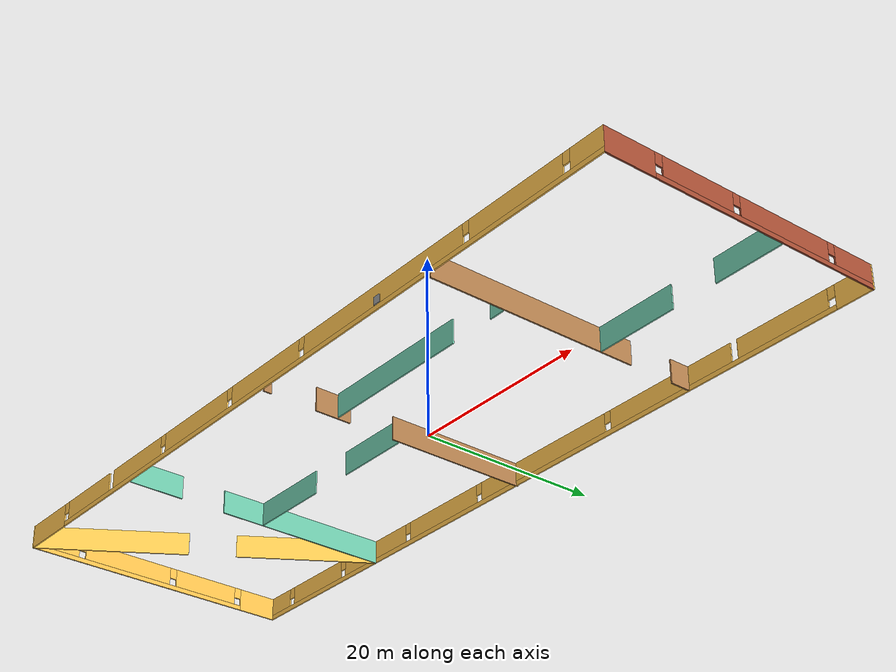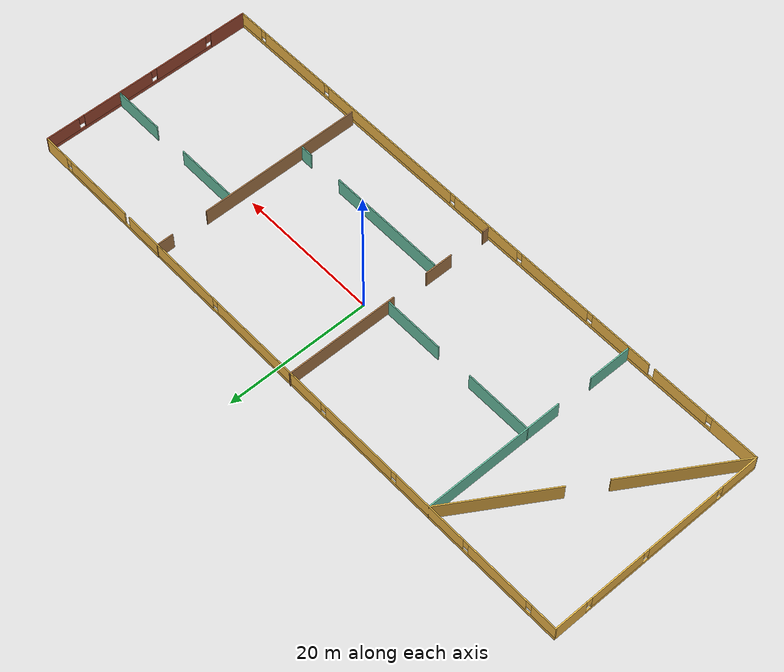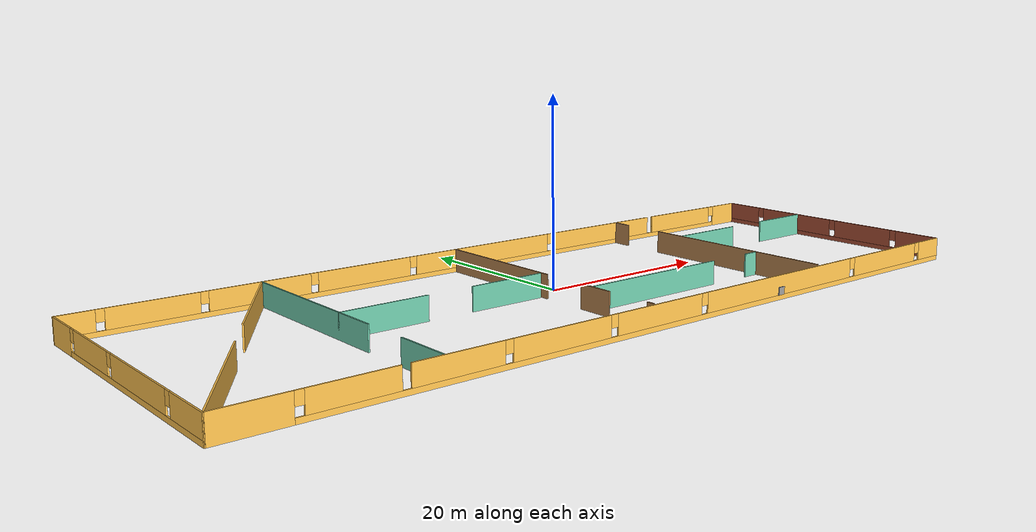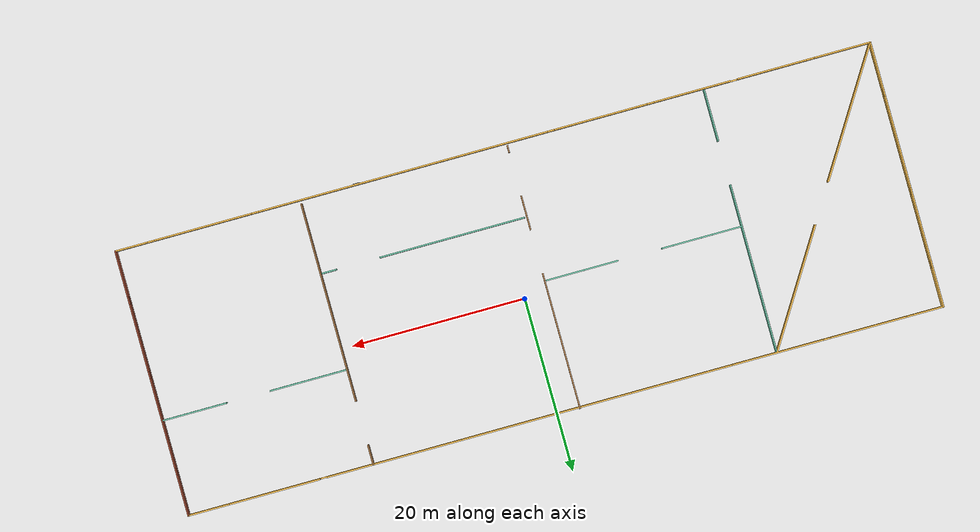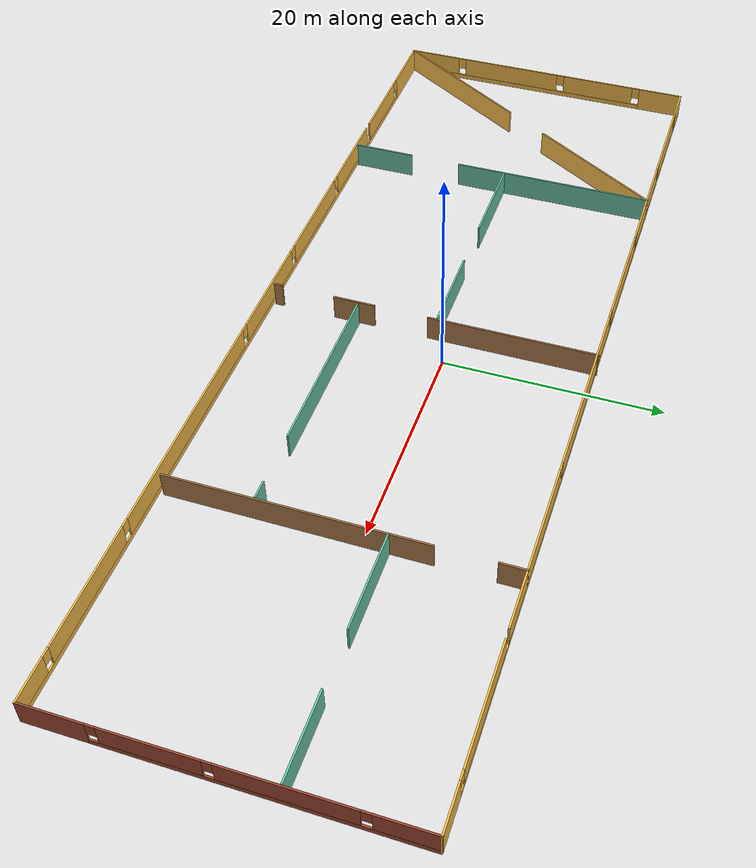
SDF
<?xml version='1.0'?>
<sdf version='1.6'>
  <model name='Building'>
    <pose frame=''>-1.07617 -1.9803 0 0 -0 0</pose>
    <link name='Wall_0'>
      <pose frame=''>-43.6608 -0.039593 0 0 -0 -1.5708</pose>
      <visual name='Wall_0_Visual_0'>
        <pose frame=''>-13.0828 0 1.25 0 -0 0</pose>
        <geometry>
          <box>
            <size>4.5844 0.15 2.5</size>
          </box>
        </geometry>
        <material>
          <script>
            <uri>file://media/materials/scripts/gazebo.material</uri>
            <name>Gazebo/Grey</name>
          </script>
          <ambient>1 0.764706 0.305882 1</ambient>
        </material>
        <meta>
          <layer>0</layer>
        </meta>
      </visual>
      <collision name='Wall_0_Collision_0'>
        <geometry>
          <box>
            <size>4.5844 0.15 2.5</size>
          </box>
        </geometry>
        <pose frame=''>-13.0828 0 1.25 0 -0 0</pose>
      </collision>
      <visual name='Wall_0_Visual_1'>
        <pose frame=''>2.2922 0 0.25 0 -0 0</pose>
        <geometry>
          <box>
            <size>26.1656 0.15 0.5</size>
          </box>
        </geometry>
        <material>
          <script>
            <uri>file://media/materials/scripts/gazebo.material</uri>
            <name>Gazebo/Grey</name>
          </script>
          <ambient>1 0.764706 0.305882 1</ambient>
        </material>
        <meta>
          <layer>0</layer>
        </meta>
      </visual>
      <collision name='Wall_0_Collision_1'>
        <geometry>
          <box>
            <size>26.1656 0.15 0.5</size>
          </box>
        </geometry>
        <pose frame=''>2.2922 0 0.25 0 -0 0</pose>
      </collision>
      <visual name='Wall_0_Visual_2'>
        <pose frame=''>-6.1399 0 1.5 0 -0 0</pose>
        <geometry>
          <box>
            <size>7.7014 0.15 2</size>
          </box>
        </geometry>
        <material>
          <script>
            <uri>file://media/materials/scripts/gazebo.material</uri>
            <name>Gazebo/Grey</name>
          </script>
          <ambient>1 0.764706 0.305882 1</ambient>
        </material>
        <meta>
          <layer>0</layer>
        </meta>
      </visual>
      <collision name='Wall_0_Collision_2'>
        <geometry>
          <box>
            <size>7.7014 0.15 2</size>
          </box>
        </geometry>
        <pose frame=''>-6.1399 0 1.5 0 -0 0</pose>
      </collision>
      <visual name='Wall_0_Visual_3'>
        <pose frame=''>3.79701 0 1.5 0 -0 0</pose>
        <geometry>
          <box>
            <size>10.5724 0.15 2</size>
          </box>
        </geometry>
        <material>
          <script>
            <uri>file://media/materials/scripts/gazebo.material</uri>
            <name>Gazebo/Grey</name>
          </script>
          <ambient>1 0.764706 0.305882 1</ambient>
        </material>
        <meta>
          <layer>0</layer>
        </meta>
      </visual>
      <collision name='Wall_0_Collision_3'>
        <geometry>
          <box>
            <size>10.5724 0.15 2</size>
          </box>
        </geometry>
        <pose frame=''>3.79701 0 1.5 0 -0 0</pose>
      </collision>
      <visual name='Wall_0_Visual_4'>
        <pose frame=''>12.6291 0 1.5 0 -0 0</pose>
        <geometry>
          <box>
            <size>5.49178 0.15 2</size>
          </box>
        </geometry>
        <material>
          <script>
            <uri>file://media/materials/scripts/gazebo.material</uri>
            <name>Gazebo/Grey</name>
          </script>
          <ambient>1 0.764706 0.305882 1</ambient>
        </material>
        <meta>
          <layer>0</layer>
        </meta>
      </visual>
      <collision name='Wall_0_Collision_4'>
        <geometry>
          <box>
            <size>5.49178 0.15 2</size>
          </box>
        </geometry>
        <pose frame=''>12.6291 0 1.5 0 -0 0</pose>
      </collision>
      <visual name='Wall_0_Visual_5'>
        <pose frame=''>-10.3906 0 1.9 0 -0 0</pose>
        <geometry>
          <box>
            <size>0.8 0.15 1.2</size>
          </box>
        </geometry>
        <material>
          <script>
            <uri>file://media/materials/scripts/gazebo.material</uri>
            <name>Gazebo/Grey</name>
          </script>
          <ambient>1 0.764706 0.305882 1</ambient>
        </material>
        <meta>
          <layer>0</layer>
        </meta>
      </visual>
      <collision name='Wall_0_Collision_5'>
        <geometry>
          <box>
            <size>0.8 0.15 1.2</size>
          </box>
        </geometry>
        <pose frame=''>-10.3906 0 1.9 0 -0 0</pose>
      </collision>
      <visual name='Wall_0_Visual_6'>
        <pose frame=''>-1.8892 0 1.9 0 -0 0</pose>
        <geometry>
          <box>
            <size>0.8 0.15 1.2</size>
          </box>
        </geometry>
        <material>
          <script>
            <uri>file://media/materials/scripts/gazebo.material</uri>
            <name>Gazebo/Grey</name>
          </script>
          <ambient>1 0.764706 0.305882 1</ambient>
        </material>
        <meta>
          <layer>0</layer>
        </meta>
      </visual>
      <collision name='Wall_0_Collision_6'>
        <geometry>
          <box>
            <size>0.8 0.15 1.2</size>
          </box>
        </geometry>
        <pose frame=''>-1.8892 0 1.9 0 -0 0</pose>
      </collision>
      <visual name='Wall_0_Visual_7'>
        <pose frame=''>9.48322 0 1.9 0 -0 0</pose>
        <geometry>
          <box>
            <size>0.8 0.15 1.2</size>
          </box>
        </geometry>
        <material>
          <script>
            <uri>file://media/materials/scripts/gazebo.material</uri>
            <name>Gazebo/Grey</name>
          </script>
          <ambient>1 0.764706 0.305882 1</ambient>
        </material>
        <meta>
          <layer>0</layer>
        </meta>
      </visual>
      <collision name='Wall_0_Collision_7'>
        <geometry>
          <box>
            <size>0.8 0.15 1.2</size>
          </box>
        </geometry>
        <pose frame=''>9.48322 0 1.9 0 -0 0</pose>
      </collision>
    </link>
    <link name='Wall_1'>
      <pose frame=''>0.014212 -15.3396 0 0 -0 0</pose>
      <visual name='Wall_1_Visual_0'>
        <pose frame=''>-40.4458 0 1.25 0 -0 0</pose>
        <geometry>
          <box>
            <size>6.6085 0.15 2.5</size>
          </box>
        </geometry>
        <material>
          <script>
            <uri>file://media/materials/scripts/gazebo.material</uri>
            <name>Gazebo/Grey</name>
          </script>
          <ambient>1 0.764706 0.305882 1</ambient>
        </material>
        <meta>
          <layer>0</layer>
        </meta>
      </visual>
      <collision name='Wall_1_Collision_0'>
        <geometry>
          <box>
            <size>6.6085 0.15 2.5</size>
          </box>
        </geometry>
        <pose frame=''>-40.4458 0 1.25 0 -0 0</pose>
      </collision>
      <visual name='Wall_1_Visual_1'>
        <pose frame=''>3.30425 0 0.25 0 -0 0</pose>
        <geometry>
          <box>
            <size>80.8915 0.15 0.5</size>
          </box>
        </geometry>
        <material>
          <script>
            <uri>file://media/materials/scripts/gazebo.material</uri>
            <name>Gazebo/Grey</name>
          </script>
          <ambient>1 0.764706 0.305882 1</ambient>
        </material>
        <meta>
          <layer>0</layer>
        </meta>
      </visual>
      <collision name='Wall_1_Collision_1'>
        <geometry>
          <box>
            <size>80.8915 0.15 0.5</size>
          </box>
        </geometry>
        <pose frame=''>3.30425 0 0.25 0 -0 0</pose>
      </collision>
      <visual name='Wall_1_Visual_2'>
        <pose frame=''>-32.3294 0 1.5 0 -0 0</pose>
        <geometry>
          <box>
            <size>8.02424 0.15 2</size>
          </box>
        </geometry>
        <material>
          <script>
            <uri>file://media/materials/scripts/gazebo.material</uri>
            <name>Gazebo/Grey</name>
          </script>
          <ambient>1 0.764706 0.305882 1</ambient>
        </material>
        <meta>
          <layer>0</layer>
        </meta>
      </visual>
      <collision name='Wall_1_Collision_2'>
        <geometry>
          <box>
            <size>8.02424 0.15 2</size>
          </box>
        </geometry>
        <pose frame=''>-32.3294 0 1.5 0 -0 0</pose>
      </collision>
      <visual name='Wall_1_Visual_3'>
        <pose frame=''>-23.0747 0 1.5 0 -0 0</pose>
        <geometry>
          <box>
            <size>8.88514 0.15 2</size>
          </box>
        </geometry>
        <material>
          <script>
            <uri>file://media/materials/scripts/gazebo.material</uri>
            <name>Gazebo/Grey</name>
          </script>
          <ambient>1 0.764706 0.305882 1</ambient>
        </material>
        <meta>
          <layer>0</layer>
        </meta>
      </visual>
      <collision name='Wall_1_Collision_3'>
        <geometry>
          <box>
            <size>8.88514 0.15 2</size>
          </box>
        </geometry>
        <pose frame=''>-23.0747 0 1.5 0 -0 0</pose>
      </collision>
      <visual name='Wall_1_Visual_4'>
        <pose frame=''>-12.4749 0 1.5 0 -0 0</pose>
        <geometry>
          <box>
            <size>10.7146 0.15 2</size>
          </box>
        </geometry>
        <material>
          <script>
            <uri>file://media/materials/scripts/gazebo.material</uri>
            <name>Gazebo/Grey</name>
          </script>
          <ambient>1 0.764706 0.305882 1</ambient>
        </material>
        <meta>
          <layer>0</layer>
        </meta>
      </visual>
      <collision name='Wall_1_Collision_4'>
        <geometry>
          <box>
            <size>10.7146 0.15 2</size>
          </box>
        </geometry>
        <pose frame=''>-12.4749 0 1.5 0 -0 0</pose>
      </collision>
      <visual name='Wall_1_Visual_5'>
        <pose frame=''>-1.01411 0 1.5 0 -0 0</pose>
        <geometry>
          <box>
            <size>10.6069 0.15 2</size>
          </box>
        </geometry>
        <material>
          <script>
            <uri>file://media/materials/scripts/gazebo.material</uri>
            <name>Gazebo/Grey</name>
          </script>
          <ambient>1 0.764706 0.305882 1</ambient>
        </material>
        <meta>
          <layer>0</layer>
        </meta>
      </visual>
      <collision name='Wall_1_Collision_5'>
        <geometry>
          <box>
            <size>10.6069 0.15 2</size>
          </box>
        </geometry>
        <pose frame=''>-1.01411 0 1.5 0 -0 0</pose>
      </collision>
      <visual name='Wall_1_Visual_6'>
        <pose frame=''>16.0963 0 1.5 0 -0 0</pose>
        <geometry>
          <box>
            <size>22.0139 0.15 2</size>
          </box>
        </geometry>
        <material>
          <script>
            <uri>file://media/materials/scripts/gazebo.material</uri>
            <name>Gazebo/Grey</name>
          </script>
          <ambient>1 0.764706 0.305882 1</ambient>
        </material>
        <meta>
          <layer>0</layer>
        </meta>
      </visual>
      <collision name='Wall_1_Collision_6'>
        <geometry>
          <box>
            <size>22.0139 0.15 2</size>
          </box>
        </geometry>
        <pose frame=''>16.0963 0 1.5 0 -0 0</pose>
      </collision>
      <visual name='Wall_1_Visual_7'>
        <pose frame=''>33.5296 0 1.5 0 -0 0</pose>
        <geometry>
          <box>
            <size>11.2526 0.15 2</size>
          </box>
        </geometry>
        <material>
          <script>
            <uri>file://media/materials/scripts/gazebo.material</uri>
            <name>Gazebo/Grey</name>
          </script>
          <ambient>1 0.764706 0.305882 1</ambient>
        </material>
        <meta>
          <layer>0</layer>
        </meta>
      </visual>
      <collision name='Wall_1_Collision_7'>
        <geometry>
          <box>
            <size>11.2526 0.15 2</size>
          </box>
        </geometry>
        <pose frame=''>33.5296 0 1.5 0 -0 0</pose>
      </collision>
      <visual name='Wall_1_Visual_8'>
        <pose frame=''>41.8529 0 1.5 0 -0 0</pose>
        <geometry>
          <box>
            <size>3.79414 0.15 2</size>
          </box>
        </geometry>
        <material>
          <script>
            <uri>file://media/materials/scripts/gazebo.material</uri>
            <name>Gazebo/Grey</name>
          </script>
          <ambient>1 0.764706 0.305882 1</ambient>
        </material>
        <meta>
          <layer>0</layer>
        </meta>
      </visual>
      <collision name='Wall_1_Collision_8'>
        <geometry>
          <box>
            <size>3.79414 0.15 2</size>
          </box>
        </geometry>
        <pose frame=''>41.8529 0 1.5 0 -0 0</pose>
      </collision>
      <visual name='Wall_1_Visual_9'>
        <pose frame=''>-36.7415 0 1.9 0 -0 0</pose>
        <geometry>
          <box>
            <size>0.8 0.15 1.2</size>
          </box>
        </geometry>
        <material>
          <script>
            <uri>file://media/materials/scripts/gazebo.material</uri>
            <name>Gazebo/Grey</name>
          </script>
          <ambient>1 0.764706 0.305882 1</ambient>
        </material>
        <meta>
          <layer>0</layer>
        </meta>
      </visual>
      <collision name='Wall_1_Collision_9'>
        <geometry>
          <box>
            <size>0.8 0.15 1.2</size>
          </box>
        </geometry>
        <pose frame=''>-36.7415 0 1.9 0 -0 0</pose>
      </collision>
      <visual name='Wall_1_Visual_10'>
        <pose frame=''>-28.3173 0 1.9 0 -0 0</pose>
        <geometry>
          <box>
            <size>0.01 0.15 1.2</size>
          </box>
        </geometry>
        <material>
          <script>
            <uri>file://media/materials/scripts/gazebo.material</uri>
            <name>Gazebo/Grey</name>
          </script>
          <ambient>1 0.764706 0.305882 1</ambient>
        </material>
        <meta>
          <layer>0</layer>
        </meta>
      </visual>
      <collision name='Wall_1_Collision_10'>
        <geometry>
          <box>
            <size>0.01 0.15 1.2</size>
          </box>
        </geometry>
        <pose frame=''>-28.3173 0 1.9 0 -0 0</pose>
      </collision>
      <visual name='Wall_1_Visual_11'>
        <pose frame=''>-18.2321 0 1.9 0 -0 0</pose>
        <geometry>
          <box>
            <size>0.8 0.15 1.2</size>
          </box>
        </geometry>
        <material>
          <script>
            <uri>file://media/materials/scripts/gazebo.material</uri>
            <name>Gazebo/Grey</name>
          </script>
          <ambient>1 0.764706 0.305882 1</ambient>
        </material>
        <meta>
          <layer>0</layer>
        </meta>
      </visual>
      <collision name='Wall_1_Collision_11'>
        <geometry>
          <box>
            <size>0.8 0.15 1.2</size>
          </box>
        </geometry>
        <pose frame=''>-18.2321 0 1.9 0 -0 0</pose>
      </collision>
      <visual name='Wall_1_Visual_12'>
        <pose frame=''>-6.71758 0 1.9 0 -0 0</pose>
        <geometry>
          <box>
            <size>0.8 0.15 1.2</size>
          </box>
        </geometry>
        <material>
          <script>
            <uri>file://media/materials/scripts/gazebo.material</uri>
            <name>Gazebo/Grey</name>
          </script>
          <ambient>1 0.764706 0.305882 1</ambient>
        </material>
        <meta>
          <layer>0</layer>
        </meta>
      </visual>
      <collision name='Wall_1_Collision_12'>
        <geometry>
          <box>
            <size>0.8 0.15 1.2</size>
          </box>
        </geometry>
        <pose frame=''>-6.71758 0 1.9 0 -0 0</pose>
      </collision>
      <visual name='Wall_1_Visual_13'>
        <pose frame=''>4.68936 0 1.9 0 -0 0</pose>
        <geometry>
          <box>
            <size>0.8 0.15 1.2</size>
          </box>
        </geometry>
        <material>
          <script>
            <uri>file://media/materials/scripts/gazebo.material</uri>
            <name>Gazebo/Grey</name>
          </script>
          <ambient>1 0.764706 0.305882 1</ambient>
        </material>
        <meta>
          <layer>0</layer>
        </meta>
      </visual>
      <collision name='Wall_1_Collision_13'>
        <geometry>
          <box>
            <size>0.8 0.15 1.2</size>
          </box>
        </geometry>
        <pose frame=''>4.68936 0 1.9 0 -0 0</pose>
      </collision>
      <visual name='Wall_1_Visual_14'>
        <pose frame=''>27.5032 0 1.9 0 -0 0</pose>
        <geometry>
          <box>
            <size>0.8 0.15 1.2</size>
          </box>
        </geometry>
        <material>
          <script>
            <uri>file://media/materials/scripts/gazebo.material</uri>
            <name>Gazebo/Grey</name>
          </script>
          <ambient>1 0.764706 0.305882 1</ambient>
        </material>
        <meta>
          <layer>0</layer>
        </meta>
      </visual>
      <collision name='Wall_1_Collision_14'>
        <geometry>
          <box>
            <size>0.8 0.15 1.2</size>
          </box>
        </geometry>
        <pose frame=''>27.5032 0 1.9 0 -0 0</pose>
      </collision>
      <visual name='Wall_1_Visual_15'>
        <pose frame=''>39.5559 0 1.9 0 -0 0</pose>
        <geometry>
          <box>
            <size>0.8 0.15 1.2</size>
          </box>
        </geometry>
        <material>
          <script>
            <uri>file://media/materials/scripts/gazebo.material</uri>
            <name>Gazebo/Grey</name>
          </script>
          <ambient>1 0.764706 0.305882 1</ambient>
        </material>
        <meta>
          <layer>0</layer>
        </meta>
      </visual>
      <collision name='Wall_1_Collision_15'>
        <geometry>
          <box>
            <size>0.8 0.15 1.2</size>
          </box>
        </geometry>
        <pose frame=''>39.5559 0 1.9 0 -0 0</pose>
      </collision>
    </link>
    <link name='Wall_11'>
      <pose frame=''>32.9634 4.28392 0 0 -0 0</pose>
      <visual name='Wall_11_Visual_0'>
        <pose frame=''>-6.17941 0 1.25 0 -0 0</pose>
        <geometry>
          <box>
            <size>8.89118 0.15 2.5</size>
          </box>
        </geometry>
        <material>
          <script>
            <uri>file://media/materials/scripts/gazebo.material</uri>
            <name>Gazebo/Grey</name>
          </script>
          <ambient>0.435294 0.796078 0.67451 1</ambient>
        </material>
        <meta>
          <layer>0</layer>
        </meta>
      </visual>
      <collision name='Wall_11_Collision_0'>
        <geometry>
          <box>
            <size>8.89118 0.15 2.5</size>
          </box>
        </geometry>
        <pose frame=''>-6.17941 0 1.25 0 -0 0</pose>
      </collision>
      <visual name='Wall_11_Visual_1'>
        <pose frame=''>6.94559 0 1.25 0 -0 0</pose>
        <geometry>
          <box>
            <size>7.35882 0.15 2.5</size>
          </box>
        </geometry>
        <material>
          <script>
            <uri>file://media/materials/scripts/gazebo.material</uri>
            <name>Gazebo/Grey</name>
          </script>
          <ambient>0.435294 0.796078 0.67451 1</ambient>
        </material>
        <meta>
          <layer>0</layer>
        </meta>
      </visual>
      <collision name='Wall_11_Collision_1'>
        <geometry>
          <box>
            <size>7.35882 0.15 2.5</size>
          </box>
        </geometry>
        <pose frame=''>6.94559 0 1.25 0 -0 0</pose>
      </collision>
    </link>
    <link name='Wall_13'>
      <pose frame=''>10.4155 -6.80018 0 0 -0 3.14159</pose>
      <visual name='Wall_13_Visual_0'>
        <pose frame=''>-10.8926 0 1.25 0 -0 0</pose>
        <geometry>
          <box>
            <size>1.71481 0.15 2.5</size>
          </box>
        </geometry>
        <material>
          <script>
            <uri>file://media/materials/scripts/gazebo.material</uri>
            <name>Gazebo/Grey</name>
          </script>
          <ambient>0.435294 0.796078 0.67451 1</ambient>
        </material>
        <meta>
          <layer>0</layer>
        </meta>
      </visual>
      <collision name='Wall_13_Collision_0'>
        <geometry>
          <box>
            <size>1.71481 0.15 2.5</size>
          </box>
        </geometry>
        <pose frame=''>-10.8926 0 1.25 0 -0 0</pose>
      </collision>
      <visual name='Wall_13_Visual_1'>
        <pose frame=''>3.3574 0 1.25 0 -0 0</pose>
        <geometry>
          <box>
            <size>16.7852 0.15 2.5</size>
          </box>
        </geometry>
        <material>
          <script>
            <uri>file://media/materials/scripts/gazebo.material</uri>
            <name>Gazebo/Grey</name>
          </script>
          <ambient>0.435294 0.796078 0.67451 1</ambient>
        </material>
        <meta>
          <layer>0</layer>
        </meta>
      </visual>
      <collision name='Wall_13_Collision_1'>
        <geometry>
          <box>
            <size>16.7852 0.15 2.5</size>
          </box>
        </geometry>
        <pose frame=''>3.3574 0 1.25 0 -0 0</pose>
      </collision>
    </link>
    <link name='Wall_15'>
      <pose frame=''>-13.0981 0.625087 0 0 -0 0</pose>
      <visual name='Wall_15_Visual_0'>
        <pose frame=''>-6.69571 0 1.25 0 -0 0</pose>
        <geometry>
          <box>
            <size>9.35858 0.15 2.5</size>
          </box>
        </geometry>
        <material>
          <script>
            <uri>file://media/materials/scripts/gazebo.material</uri>
            <name>Gazebo/Grey</name>
          </script>
          <ambient>0.435294 0.796078 0.67451 1</ambient>
        </material>
        <meta>
          <layer>0</layer>
        </meta>
      </visual>
      <collision name='Wall_15_Collision_0'>
        <geometry>
          <box>
            <size>9.35858 0.15 2.5</size>
          </box>
        </geometry>
        <pose frame=''>-6.69571 0 1.25 0 -0 0</pose>
      </collision>
      <visual name='Wall_15_Visual_1'>
        <pose frame=''>7.17929 0 1.25 0 -0 0</pose>
        <geometry>
          <box>
            <size>8.39142 0.15 2.5</size>
          </box>
        </geometry>
        <material>
          <script>
            <uri>file://media/materials/scripts/gazebo.material</uri>
            <name>Gazebo/Grey</name>
          </script>
          <ambient>0.435294 0.796078 0.67451 1</ambient>
        </material>
        <meta>
          <layer>0</layer>
        </meta>
      </visual>
      <collision name='Wall_15_Collision_1'>
        <geometry>
          <box>
            <size>8.39142 0.15 2.5</size>
          </box>
        </geometry>
        <pose frame=''>7.17929 0 1.25 0 -0 0</pose>
      </collision>
    </link>
    <link name='Wall_17'>
      <pose frame=''>-34.0295 -0.039593 0 0 -0 1.00897</pose>
      <visual name='Wall_17_Visual_0'>
        <pose frame=''>-9.99099 0 1.25 0 -0 0</pose>
        <geometry>
          <box>
            <size>16.3262 0.15 2.5</size>
          </box>
        </geometry>
        <material>
          <script>
            <uri>file://media/materials/scripts/gazebo.material</uri>
            <name>Gazebo/Grey</name>
          </script>
          <ambient>1 0.764706 0.305882 1</ambient>
        </material>
        <meta>
          <layer>0</layer>
        </meta>
      </visual>
      <collision name='Wall_17_Collision_0'>
        <geometry>
          <box>
            <size>16.3262 0.15 2.5</size>
          </box>
        </geometry>
        <pose frame=''>-9.99099 0 1.25 0 -0 0</pose>
      </collision>
      <visual name='Wall_17_Visual_1'>
        <pose frame=''>10.6631 0 1.25 0 -0 0</pose>
        <geometry>
          <box>
            <size>14.982 0.15 2.5</size>
          </box>
        </geometry>
        <material>
          <script>
            <uri>file://media/materials/scripts/gazebo.material</uri>
            <name>Gazebo/Grey</name>
          </script>
          <ambient>1 0.764706 0.305882 1</ambient>
        </material>
        <meta>
          <layer>0</layer>
        </meta>
      </visual>
      <collision name='Wall_17_Collision_1'>
        <geometry>
          <box>
            <size>14.982 0.15 2.5</size>
          </box>
        </geometry>
        <pose frame=''>10.6631 0 1.25 0 -0 0</pose>
      </collision>
    </link>
    <link name='Wall_2'>
      <pose frame=''>43.6892 -0.039593 0 0 -0 1.5708</pose>
      <visual name='Wall_2_Visual_0'>
        <pose frame=''>-12.6829 0 1.25 0 -0 0</pose>
        <geometry>
          <box>
            <size>5.38417 0.15 2.5</size>
          </box>
        </geometry>
        <material>
          <script>
            <uri>file://media/materials/scripts/gazebo.material</uri>
            <name>Gazebo/Bricks</name>
          </script>
          <ambient>1 1 1 1</ambient>
        </material>
        <meta>
          <layer>0</layer>
        </meta>
      </visual>
      <collision name='Wall_2_Collision_0'>
        <geometry>
          <box>
            <size>5.38417 0.15 2.5</size>
          </box>
        </geometry>
        <pose frame=''>-12.6829 0 1.25 0 -0 0</pose>
      </collision>
      <visual name='Wall_2_Visual_1'>
        <pose frame=''>2.69209 0 0.25 0 -0 0</pose>
        <geometry>
          <box>
            <size>25.3658 0.15 0.5</size>
          </box>
        </geometry>
        <material>
          <script>
            <uri>file://media/materials/scripts/gazebo.material</uri>
            <name>Gazebo/Bricks</name>
          </script>
          <ambient>1 1 1 1</ambient>
        </material>
        <meta>
          <layer>0</layer>
        </meta>
      </visual>
      <collision name='Wall_2_Collision_1'>
        <geometry>
          <box>
            <size>25.3658 0.15 0.5</size>
          </box>
        </geometry>
        <pose frame=''>2.69209 0 0.25 0 -0 0</pose>
      </collision>
      <visual name='Wall_2_Visual_2'>
        <pose frame=''>-5.28632 0 1.5 0 -0 0</pose>
        <geometry>
          <box>
            <size>7.80901 0.15 2</size>
          </box>
        </geometry>
        <material>
          <script>
            <uri>file://media/materials/scripts/gazebo.material</uri>
            <name>Gazebo/Bricks</name>
          </script>
          <ambient>1 1 1 1</ambient>
        </material>
        <meta>
          <layer>0</layer>
        </meta>
      </visual>
      <collision name='Wall_2_Collision_2'>
        <geometry>
          <box>
            <size>7.80901 0.15 2</size>
          </box>
        </geometry>
        <pose frame=''>-5.28632 0 1.5 0 -0 0</pose>
      </collision>
      <visual name='Wall_2_Visual_3'>
        <pose frame=''>4.61404 0 1.5 0 -0 0</pose>
        <geometry>
          <box>
            <size>10.3917 0.15 2</size>
          </box>
        </geometry>
        <material>
          <script>
            <uri>file://media/materials/scripts/gazebo.material</uri>
            <name>Gazebo/Bricks</name>
          </script>
          <ambient>1 1 1 1</ambient>
        </material>
        <meta>
          <layer>0</layer>
        </meta>
      </visual>
      <collision name='Wall_2_Collision_3'>
        <geometry>
          <box>
            <size>10.3917 0.15 2</size>
          </box>
        </geometry>
        <pose frame=''>4.61404 0 1.5 0 -0 0</pose>
      </collision>
      <visual name='Wall_2_Visual_4'>
        <pose frame=''>12.9924 0 1.5 0 -0 0</pose>
        <geometry>
          <box>
            <size>4.7651 0.15 2</size>
          </box>
        </geometry>
        <material>
          <script>
            <uri>file://media/materials/scripts/gazebo.material</uri>
            <name>Gazebo/Bricks</name>
          </script>
          <ambient>1 1 1 1</ambient>
        </material>
        <meta>
          <layer>0</layer>
        </meta>
      </visual>
      <collision name='Wall_2_Collision_4'>
        <geometry>
          <box>
            <size>4.7651 0.15 2</size>
          </box>
        </geometry>
        <pose frame=''>12.9924 0 1.5 0 -0 0</pose>
      </collision>
      <visual name='Wall_2_Visual_5'>
        <pose frame=''>-9.59083 0 1.9 0 -0 0</pose>
        <geometry>
          <box>
            <size>0.8 0.15 1.2</size>
          </box>
        </geometry>
        <material>
          <script>
            <uri>file://media/materials/scripts/gazebo.material</uri>
            <name>Gazebo/Bricks</name>
          </script>
          <ambient>1 1 1 1</ambient>
        </material>
        <meta>
          <layer>0</layer>
        </meta>
      </visual>
      <collision name='Wall_2_Collision_5'>
        <geometry>
          <box>
            <size>0.8 0.15 1.2</size>
          </box>
        </geometry>
        <pose frame=''>-9.59083 0 1.9 0 -0 0</pose>
      </collision>
      <visual name='Wall_2_Visual_6'>
        <pose frame=''>-0.981818 0 1.9 0 -0 0</pose>
        <geometry>
          <box>
            <size>0.8 0.15 1.2</size>
          </box>
        </geometry>
        <material>
          <script>
            <uri>file://media/materials/scripts/gazebo.material</uri>
            <name>Gazebo/Bricks</name>
          </script>
          <ambient>1 1 1 1</ambient>
        </material>
        <meta>
          <layer>0</layer>
        </meta>
      </visual>
      <collision name='Wall_2_Collision_6'>
        <geometry>
          <box>
            <size>0.8 0.15 1.2</size>
          </box>
        </geometry>
        <pose frame=''>-0.981818 0 1.9 0 -0 0</pose>
      </collision>
      <visual name='Wall_2_Visual_7'>
        <pose frame=''>10.2099 0 1.9 0 -0 0</pose>
        <geometry>
          <box>
            <size>0.8 0.15 1.2</size>
          </box>
        </geometry>
        <material>
          <script>
            <uri>file://media/materials/scripts/gazebo.material</uri>
            <name>Gazebo/Bricks</name>
          </script>
          <ambient>1 1 1 1</ambient>
        </material>
        <meta>
          <layer>0</layer>
        </meta>
      </visual>
      <collision name='Wall_2_Collision_7'>
        <geometry>
          <box>
            <size>0.8 0.15 1.2</size>
          </box>
        </geometry>
        <pose frame=''>10.2099 0 1.9 0 -0 0</pose>
      </collision>
    </link>
    <link name='Wall_3'>
      <pose frame=''>0.014212 15.2604 0 0 -0 3.14159</pose>
      <visual name='Wall_3_Visual_0'>
        <pose frame=''>-41.7453 0 1.25 0 -0 0</pose>
        <geometry>
          <box>
            <size>4.00936 0.15 2.5</size>
          </box>
        </geometry>
        <material>
          <script>
            <uri>file://media/materials/scripts/gazebo.material</uri>
            <name>Gazebo/Grey</name>
          </script>
          <ambient>1 0.764706 0.305882 1</ambient>
        </material>
        <meta>
          <layer>0</layer>
        </meta>
      </visual>
      <collision name='Wall_3_Collision_0'>
        <geometry>
          <box>
            <size>4.00936 0.15 2.5</size>
          </box>
        </geometry>
        <pose frame=''>-41.7453 0 1.25 0 -0 0</pose>
      </collision>
      <visual name='Wall_3_Visual_1'>
        <pose frame=''>2.00468 0 0.25 0 -0 0</pose>
        <geometry>
          <box>
            <size>83.4906 0.15 0.5</size>
          </box>
        </geometry>
        <material>
          <script>
            <uri>file://media/materials/scripts/gazebo.material</uri>
            <name>Gazebo/Grey</name>
          </script>
          <ambient>1 0.764706 0.305882 1</ambient>
        </material>
        <meta>
          <layer>0</layer>
        </meta>
      </visual>
      <collision name='Wall_3_Collision_1'>
        <geometry>
          <box>
            <size>83.4906 0.15 0.5</size>
          </box>
        </geometry>
        <pose frame=''>2.00468 0 0.25 0 -0 0</pose>
      </collision>
      <visual name='Wall_3_Visual_2'>
        <pose frame=''>-33.691 0 1.5 0 -0 0</pose>
        <geometry>
          <box>
            <size>10.4993 0.15 2</size>
          </box>
        </geometry>
        <material>
          <script>
            <uri>file://media/materials/scripts/gazebo.material</uri>
            <name>Gazebo/Grey</name>
          </script>
          <ambient>1 0.764706 0.305882 1</ambient>
        </material>
        <meta>
          <layer>0</layer>
        </meta>
      </visual>
      <collision name='Wall_3_Collision_2'>
        <geometry>
          <box>
            <size>10.4993 0.15 2</size>
          </box>
        </geometry>
        <pose frame=''>-33.691 0 1.5 0 -0 0</pose>
      </collision>
      <visual name='Wall_3_Visual_3'>
        <pose frame=''>-19.8627 0 1.5 0 -0 0</pose>
        <geometry>
          <box>
            <size>15.5571 0.15 2</size>
          </box>
        </geometry>
        <material>
          <script>
            <uri>file://media/materials/scripts/gazebo.material</uri>
            <name>Gazebo/Grey</name>
          </script>
          <ambient>1 0.764706 0.305882 1</ambient>
        </material>
        <meta>
          <layer>0</layer>
        </meta>
      </visual>
      <collision name='Wall_3_Collision_3'>
        <geometry>
          <box>
            <size>15.5571 0.15 2</size>
          </box>
        </geometry>
        <pose frame=''>-19.8627 0 1.5 0 -0 0</pose>
      </collision>
      <visual name='Wall_3_Visual_4'>
        <pose frame=''>-2.25554 0 1.5 0 -0 0</pose>
        <geometry>
          <box>
            <size>18.0573 0.15 2</size>
          </box>
        </geometry>
        <material>
          <script>
            <uri>file://media/materials/scripts/gazebo.material</uri>
            <name>Gazebo/Grey</name>
          </script>
          <ambient>1 0.764706 0.305882 1</ambient>
        </material>
        <meta>
          <layer>0</layer>
        </meta>
      </visual>
      <collision name='Wall_3_Collision_4'>
        <geometry>
          <box>
            <size>18.0573 0.15 2</size>
          </box>
        </geometry>
        <pose frame=''>-2.25554 0 1.5 0 -0 0</pose>
      </collision>
      <visual name='Wall_3_Visual_5'>
        <pose frame=''>12.9842 0 1.5 0 -0 0</pose>
        <geometry>
          <box>
            <size>10.8222 0.15 2</size>
          </box>
        </geometry>
        <material>
          <script>
            <uri>file://media/materials/scripts/gazebo.material</uri>
            <name>Gazebo/Grey</name>
          </script>
          <ambient>1 0.764706 0.305882 1</ambient>
        </material>
        <meta>
          <layer>0</layer>
        </meta>
      </visual>
      <collision name='Wall_3_Collision_5'>
        <geometry>
          <box>
            <size>10.8222 0.15 2</size>
          </box>
        </geometry>
        <pose frame=''>12.9842 0 1.5 0 -0 0</pose>
      </collision>
      <visual name='Wall_3_Visual_6'>
        <pose frame=''>24.4987 0 1.5 0 -0 0</pose>
        <geometry>
          <box>
            <size>10.6069 0.15 2</size>
          </box>
        </geometry>
        <material>
          <script>
            <uri>file://media/materials/scripts/gazebo.material</uri>
            <name>Gazebo/Grey</name>
          </script>
          <ambient>1 0.764706 0.305882 1</ambient>
        </material>
        <meta>
          <layer>0</layer>
        </meta>
      </visual>
      <collision name='Wall_3_Collision_6'>
        <geometry>
          <box>
            <size>10.6069 0.15 2</size>
          </box>
        </geometry>
        <pose frame=''>24.4987 0 1.5 0 -0 0</pose>
      </collision>
      <visual name='Wall_3_Visual_7'>
        <pose frame=''>34.991 0 1.5 0 -0 0</pose>
        <geometry>
          <box>
            <size>8.77752 0.15 2</size>
          </box>
        </geometry>
        <material>
          <script>
            <uri>file://media/materials/scripts/gazebo.material</uri>
            <name>Gazebo/Grey</name>
          </script>
          <ambient>1 0.764706 0.305882 1</ambient>
        </material>
        <meta>
          <layer>0</layer>
        </meta>
      </visual>
      <collision name='Wall_3_Collision_7'>
        <geometry>
          <box>
            <size>8.77752 0.15 2</size>
          </box>
        </geometry>
        <pose frame=''>34.991 0 1.5 0 -0 0</pose>
      </collision>
      <visual name='Wall_3_Visual_8'>
        <pose frame=''>41.9649 0 1.5 0 -0 0</pose>
        <geometry>
          <box>
            <size>3.57027 0.15 2</size>
          </box>
        </geometry>
        <material>
          <script>
            <uri>file://media/materials/scripts/gazebo.material</uri>
            <name>Gazebo/Grey</name>
          </script>
          <ambient>1 0.764706 0.305882 1</ambient>
        </material>
        <meta>
          <layer>0</layer>
        </meta>
      </visual>
      <collision name='Wall_3_Collision_8'>
        <geometry>
          <box>
            <size>3.57027 0.15 2</size>
          </box>
        </geometry>
        <pose frame=''>41.9649 0 1.5 0 -0 0</pose>
      </collision>
      <visual name='Wall_3_Visual_9'>
        <pose frame=''>-39.3406 0 1.9 0 -0 0</pose>
        <geometry>
          <box>
            <size>0.8 0.15 1.2</size>
          </box>
        </geometry>
        <material>
          <script>
            <uri>file://media/materials/scripts/gazebo.material</uri>
            <name>Gazebo/Grey</name>
          </script>
          <ambient>1 0.764706 0.305882 1</ambient>
        </material>
        <meta>
          <layer>0</layer>
        </meta>
      </visual>
      <collision name='Wall_3_Collision_9'>
        <geometry>
          <box>
            <size>0.8 0.15 1.2</size>
          </box>
        </geometry>
        <pose frame=''>-39.3406 0 1.9 0 -0 0</pose>
      </collision>
      <visual name='Wall_3_Visual_10'>
        <pose frame=''>-28.4413 0 1.9 0 -0 0</pose>
        <geometry>
          <box>
            <size>0.01 0.15 1.2</size>
          </box>
        </geometry>
        <material>
          <script>
            <uri>file://media/materials/scripts/gazebo.material</uri>
            <name>Gazebo/Grey</name>
          </script>
          <ambient>1 0.764706 0.305882 1</ambient>
        </material>
        <meta>
          <layer>0</layer>
        </meta>
      </visual>
      <collision name='Wall_3_Collision_10'>
        <geometry>
          <box>
            <size>0.01 0.15 1.2</size>
          </box>
        </geometry>
        <pose frame=''>-28.4413 0 1.9 0 -0 0</pose>
      </collision>
      <visual name='Wall_3_Visual_11'>
        <pose frame=''>-11.6842 0 1.9 0 -0 0</pose>
        <geometry>
          <box>
            <size>0.8 0.15 1.2</size>
          </box>
        </geometry>
        <material>
          <script>
            <uri>file://media/materials/scripts/gazebo.material</uri>
            <name>Gazebo/Grey</name>
          </script>
          <ambient>1 0.764706 0.305882 1</ambient>
        </material>
        <meta>
          <layer>0</layer>
        </meta>
      </visual>
      <collision name='Wall_3_Collision_11'>
        <geometry>
          <box>
            <size>0.8 0.15 1.2</size>
          </box>
        </geometry>
        <pose frame=''>-11.6842 0 1.9 0 -0 0</pose>
      </collision>
      <visual name='Wall_3_Visual_12'>
        <pose frame=''>7.1731 0 1.9 0 -0 0</pose>
        <geometry>
          <box>
            <size>0.8 0.15 1.2</size>
          </box>
        </geometry>
        <material>
          <script>
            <uri>file://media/materials/scripts/gazebo.material</uri>
            <name>Gazebo/Grey</name>
          </script>
          <ambient>1 0.764706 0.305882 1</ambient>
        </material>
        <meta>
          <layer>0</layer>
        </meta>
      </visual>
      <collision name='Wall_3_Collision_12'>
        <geometry>
          <box>
            <size>0.8 0.15 1.2</size>
          </box>
        </geometry>
        <pose frame=''>7.1731 0 1.9 0 -0 0</pose>
      </collision>
      <visual name='Wall_3_Visual_13'>
        <pose frame=''>18.7953 0 1.9 0 -0 0</pose>
        <geometry>
          <box>
            <size>0.8 0.15 1.2</size>
          </box>
        </geometry>
        <material>
          <script>
            <uri>file://media/materials/scripts/gazebo.material</uri>
            <name>Gazebo/Grey</name>
          </script>
          <ambient>1 0.764706 0.305882 1</ambient>
        </material>
        <meta>
          <layer>0</layer>
        </meta>
      </visual>
      <collision name='Wall_3_Collision_13'>
        <geometry>
          <box>
            <size>0.8 0.15 1.2</size>
          </box>
        </geometry>
        <pose frame=''>18.7953 0 1.9 0 -0 0</pose>
      </collision>
      <visual name='Wall_3_Visual_14'>
        <pose frame=''>30.2022 0 1.9 0 -0 0</pose>
        <geometry>
          <box>
            <size>0.8 0.15 1.2</size>
          </box>
        </geometry>
        <material>
          <script>
            <uri>file://media/materials/scripts/gazebo.material</uri>
            <name>Gazebo/Grey</name>
          </script>
          <ambient>1 0.764706 0.305882 1</ambient>
        </material>
        <meta>
          <layer>0</layer>
        </meta>
      </visual>
      <collision name='Wall_3_Collision_14'>
        <geometry>
          <box>
            <size>0.8 0.15 1.2</size>
          </box>
        </geometry>
        <pose frame=''>30.2022 0 1.9 0 -0 0</pose>
      </collision>
      <visual name='Wall_3_Visual_15'>
        <pose frame=''>39.7797 0 1.9 0 -0 0</pose>
        <geometry>
          <box>
            <size>0.8 0.15 1.2</size>
          </box>
        </geometry>
        <material>
          <script>
            <uri>file://media/materials/scripts/gazebo.material</uri>
            <name>Gazebo/Grey</name>
          </script>
          <ambient>1 0.764706 0.305882 1</ambient>
        </material>
        <meta>
          <layer>0</layer>
        </meta>
      </visual>
      <collision name='Wall_3_Collision_15'>
        <geometry>
          <box>
            <size>0.8 0.15 1.2</size>
          </box>
        </geometry>
        <pose frame=''>39.7797 0 1.9 0 -0 0</pose>
      </collision>
    </link>
    <link name='Wall_5'>
      <pose frame=''>-24.3981 0.085406 0 0 -0 -1.5708</pose>
      <visual name='Wall_5_Visual_0'>
        <pose frame=''>-5.47838 0 1.25 0 -0 0</pose>
        <geometry>
          <box>
            <size>19.5432 0.15 2.5</size>
          </box>
        </geometry>
        <material>
          <script>
            <uri>file://media/materials/scripts/gazebo.material</uri>
            <name>Gazebo/Grey</name>
          </script>
          <ambient>0.435294 0.796078 0.67451 1</ambient>
        </material>
        <meta>
          <layer>0</layer>
        </meta>
      </visual>
      <collision name='Wall_5_Collision_0'>
        <geometry>
          <box>
            <size>19.5432 0.15 2.5</size>
          </box>
        </geometry>
        <pose frame=''>-5.47838 0 1.25 0 -0 0</pose>
      </collision>
      <visual name='Wall_5_Visual_1'>
        <pose frame=''>12.2716 0 1.25 0 -0 0</pose>
        <geometry>
          <box>
            <size>5.95676 0.15 2.5</size>
          </box>
        </geometry>
        <material>
          <script>
            <uri>file://media/materials/scripts/gazebo.material</uri>
            <name>Gazebo/Grey</name>
          </script>
          <ambient>0.435294 0.796078 0.67451 1</ambient>
        </material>
        <meta>
          <layer>0</layer>
        </meta>
      </visual>
      <collision name='Wall_5_Collision_1'>
        <geometry>
          <box>
            <size>5.95676 0.15 2.5</size>
          </box>
        </geometry>
        <pose frame=''>12.2716 0 1.25 0 -0 0</pose>
      </collision>
    </link>
    <link name='Wall_7'>
      <pose frame=''>-1.58424 0.193019 0 0 -0 -1.5708</pose>
      <visual name='Wall_7_Visual_0'>
        <pose frame=''>-7.3997 0 1.25 0 -0 0</pose>
        <geometry>
          <box>
            <size>15.7006 0.15 2.5</size>
          </box>
        </geometry>
        <material>
          <script>
            <uri>file://media/materials/scripts/gazebo.material</uri>
            <name>Gazebo/Wood</name>
          </script>
          <ambient>1 1 1 1</ambient>
        </material>
        <meta>
          <layer>0</layer>
        </meta>
      </visual>
      <collision name='Wall_7_Collision_0'>
        <geometry>
          <box>
            <size>15.7006 0.15 2.5</size>
          </box>
        </geometry>
        <pose frame=''>-7.3997 0 1.25 0 -0 0</pose>
      </collision>
      <visual name='Wall_7_Visual_1'>
        <pose frame=''>7.42902 0 1.25 0 -0 0</pose>
        <geometry>
          <box>
            <size>3.95685 0.15 2.5</size>
          </box>
        </geometry>
        <material>
          <script>
            <uri>file://media/materials/scripts/gazebo.material</uri>
            <name>Gazebo/Wood</name>
          </script>
          <ambient>1 1 1 1</ambient>
        </material>
        <meta>
          <layer>0</layer>
        </meta>
      </visual>
      <collision name='Wall_7_Collision_1'>
        <geometry>
          <box>
            <size>3.95685 0.15 2.5</size>
          </box>
        </geometry>
        <pose frame=''>7.42902 0 1.25 0 -0 0</pose>
      </collision>
      <visual name='Wall_7_Visual_2'>
        <pose frame=''>14.8287 0 1.25 0 -0 0</pose>
        <geometry>
          <box>
            <size>0.842552 0.15 2.5</size>
          </box>
        </geometry>
        <material>
          <script>
            <uri>file://media/materials/scripts/gazebo.material</uri>
            <name>Gazebo/Wood</name>
          </script>
          <ambient>1 1 1 1</ambient>
        </material>
        <meta>
          <layer>0</layer>
        </meta>
      </visual>
      <collision name='Wall_7_Collision_2'>
        <geometry>
          <box>
            <size>0.842552 0.15 2.5</size>
          </box>
        </geometry>
        <pose frame=''>14.8287 0 1.25 0 -0 0</pose>
      </collision>
    </link>
    <link name='Wall_9'>
      <pose frame=''>22.3058 0.210406 0 0 -0 -1.5708</pose>
      <visual name='Wall_9_Visual_0'>
        <pose frame=''>-13.9494 0 1.25 0 -0 0</pose>
        <geometry>
          <box>
            <size>2.35123 0.15 2.5</size>
          </box>
        </geometry>
        <material>
          <script>
            <uri>file://media/materials/scripts/gazebo.material</uri>
            <name>Gazebo/Wood</name>
          </script>
          <ambient>1 1 1 1</ambient>
        </material>
        <meta>
          <layer>0</layer>
        </meta>
      </visual>
      <collision name='Wall_9_Collision_0'>
        <geometry>
          <box>
            <size>2.35123 0.15 2.5</size>
          </box>
        </geometry>
        <pose frame=''>-13.9494 0 1.25 0 -0 0</pose>
      </collision>
      <visual name='Wall_9_Visual_1'>
        <pose frame=''>3.67561 0 1.25 0 -0 0</pose>
        <geometry>
          <box>
            <size>22.8988 0.15 2.5</size>
          </box>
        </geometry>
        <material>
          <script>
            <uri>file://media/materials/scripts/gazebo.material</uri>
            <name>Gazebo/Wood</name>
          </script>
          <ambient>1 1 1 1</ambient>
        </material>
        <meta>
          <layer>0</layer>
        </meta>
      </visual>
      <collision name='Wall_9_Collision_1'>
        <geometry>
          <box>
            <size>22.8988 0.15 2.5</size>
          </box>
        </geometry>
        <pose frame=''>3.67561 0 1.25 0 -0 0</pose>
      </collision>
    </link>
    <link name='Window_13'>
      <collision name='Window_13_Collision'>
        <geometry>
          <box>
            <size>0.8 0.17 0.8</size>
          </box>
        </geometry>
        <pose frame=''>0 0 0.4 0 -0 0</pose>
      </collision>
      <visual name='Window_13_Visual'>
        <pose frame=''>0 0 0.4 0 -0 0</pose>
        <geometry>
          <box>
            <size>0.8 0.17 0.8</size>
          </box>
        </geometry>
        <material>
          <script>
            <uri>file://media/materials/scripts/gazebo.material</uri>
            <name>Gazebo/Grey</name>
          </script>
        </material>
      </visual>
      <pose frame=''>15.7877 -15.4415 0.5 0 -0 0</pose>
    </link>
    <static>1</static>
  </model>
</sdf>
